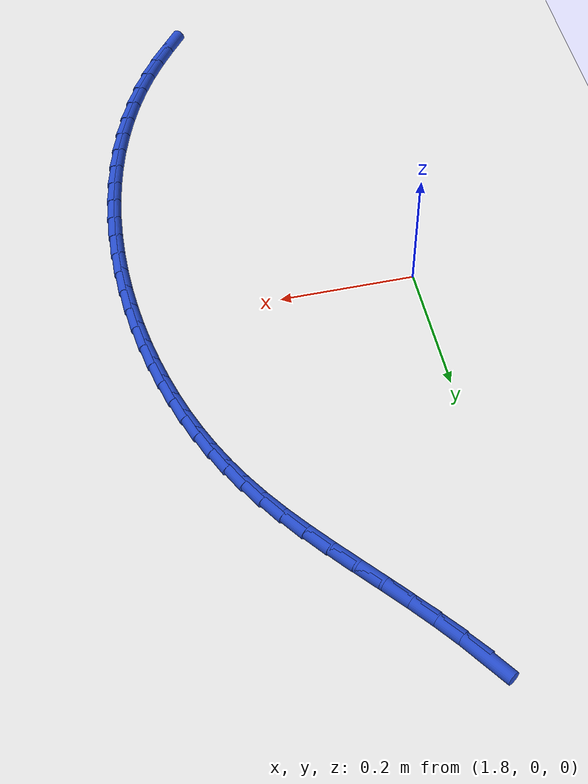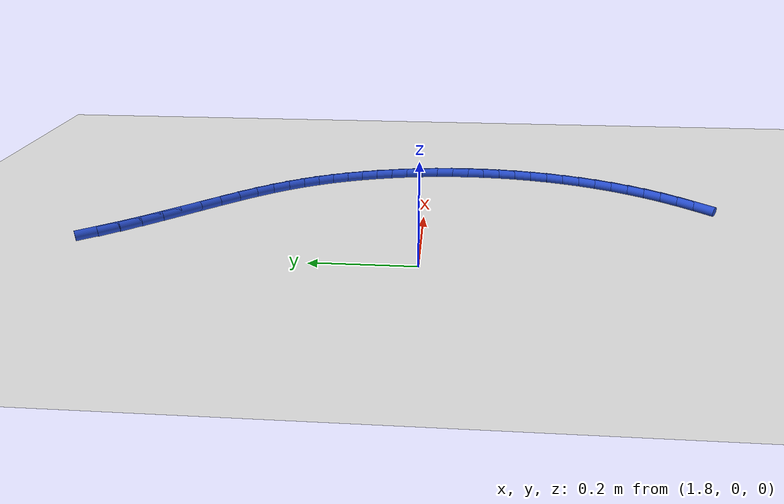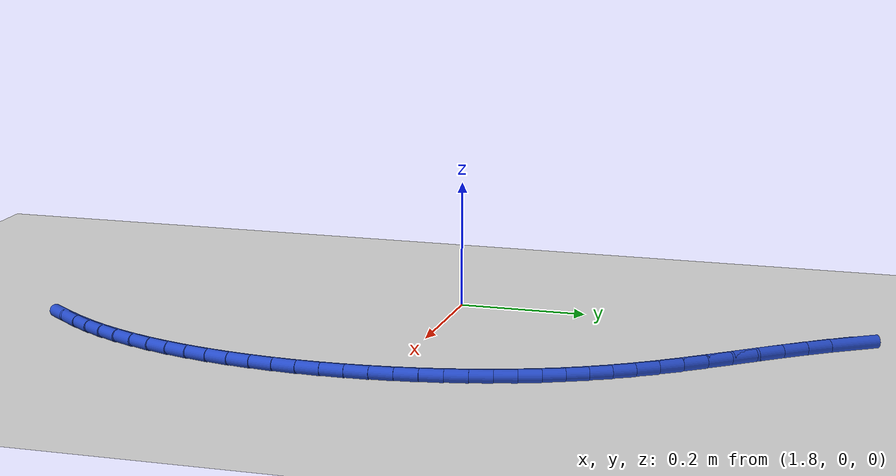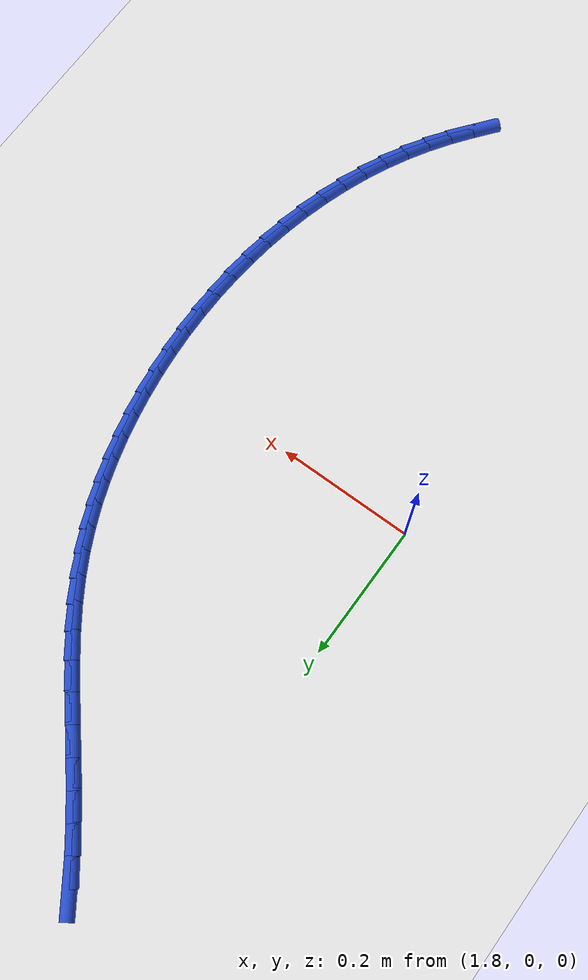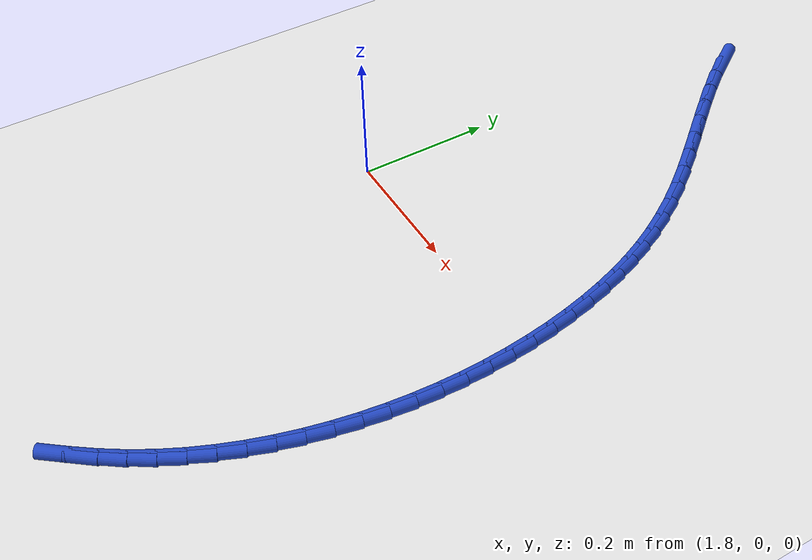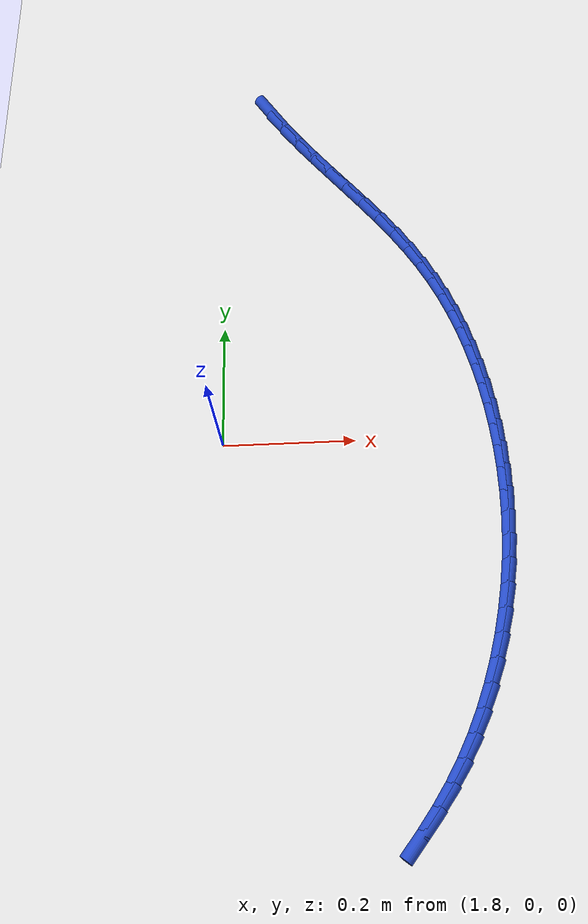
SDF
<sdf version="1.6">
 <world name="default">
  <model name="ground_plane">
   <static>1</static>
   <link name="link">
    <collision name="collision">
     <geometry><plane><normal>0 0 1</normal><size>100 100</size></plane></geometry>
     <surface><friction><ode><mu>100</mu><mu2>50</mu2></ode></friction></surface>
    </collision>
    <visual name="visual">
     <cast_shadows>0</cast_shadows>
     <geometry><plane><normal>0 0 1</normal><size>100 100</size></plane></geometry>
     <material>
      <script><uri>file://media/materials/scripts/gazebo.material</uri><name>Gazebo/WhiteGlow</name></script>
     </material>
    </visual>
   </link>
  </model>
  <model name="line">
   <link name="link_92">
    <pose>1.8774374021442877 0.6265046233111485 0.01 0 1.57 -0.9808010754879626</pose>
    <collision name="collision">
     <geometry><cylinder><radius>0.01</radius><length>0.08</length></cylinder></geometry>
    </collision>
    <visual name="visual">
     <material>
      <script><name>Gazebo/Blue</name><uri>file://media/materials/scripts/gazebo.material</uri></script>
     </material>
     <geometry><cylinder><radius>0.01</radius><length>0.08</length></cylinder></geometry>
    </visual>
   </link>
   <link name="link_93">
    <pose>1.8991911944667663 0.594014395029745 0.01 0 1.57 -0.9351428031789258</pose>
    <collision name="collision">
     <geometry><cylinder><radius>0.01</radius><length>0.08</length></cylinder></geometry>
    </collision>
    <visual name="visual">
     <material>
      <script><name>Gazebo/Blue</name><uri>file://media/materials/scripts/gazebo.material</uri></script>
     </material>
     <geometry><cylinder><radius>0.01</radius><length>0.08</length></cylinder></geometry>
    </visual>
   </link>
   <link name="link_94">
    <pose>1.9232338216860543 0.5614279042837972 0.01 0 1.57 -0.9039852305204067</pose>
    <collision name="collision">
     <geometry><cylinder><radius>0.01</radius><length>0.08</length></cylinder></geometry>
    </collision>
    <visual name="visual">
     <material>
      <script><name>Gazebo/Blue</name><uri>file://media/materials/scripts/gazebo.material</uri></script>
     </material>
     <geometry><cylinder><radius>0.01</radius><length>0.08</length></cylinder></geometry>
    </visual>
   </link>
   <link name="link_95">
    <pose>1.9488910431045885 0.5288297860900839 0.01 0 1.57 -0.8853224809207515</pose>
    <collision name="collision">
     <geometry><cylinder><radius>0.01</radius><length>0.08</length></cylinder></geometry>
    </collision>
    <visual name="visual">
     <material>
      <script><name>Gazebo/Blue</name><uri>file://media/materials/scripts/gazebo.material</uri></script>
     </material>
     <geometry><cylinder><radius>0.01</radius><length>0.08</length></cylinder></geometry>
    </visual>
   </link>
   <link name="link_96">
    <pose>1.9754886180248028 0.49630467546538487 0.01 0 1.57 -0.8780524695200574</pose>
    <collision name="collision">
     <geometry><cylinder><radius>0.01</radius><length>0.08</length></cylinder></geometry>
    </collision>
    <visual name="visual">
     <material>
      <script><name>Gazebo/Blue</name><uri>file://media/materials/scripts/gazebo.material</uri></script>
     </material>
     <geometry><cylinder><radius>0.01</radius><length>0.08</length></cylinder></geometry>
    </visual>
   </link>
   <link name="link_97">
    <pose>2.0023523057491333 0.46393720742647837 0.01 0 1.57 -0.8818808299381252</pose>
    <collision name="collision">
     <geometry><cylinder><radius>0.01</radius><length>0.08</length></cylinder></geometry>
    </collision>
    <visual name="visual">
     <material>
      <script><name>Gazebo/Blue</name><uri>file://media/materials/scripts/gazebo.material</uri></script>
     </material>
     <geometry><cylinder><radius>0.01</radius><length>0.08</length></cylinder></geometry>
    </visual>
   </link>
   <link name="link_98">
    <pose>2.028807865580015 0.43181201699014327 0.01 0 1.57 -0.8973113338929862</pose>
    <collision name="collision">
     <geometry><cylinder><radius>0.01</radius><length>0.08</length></cylinder></geometry>
    </collision>
    <visual name="visual">
     <material>
      <script><name>Gazebo/Blue</name><uri>file://media/materials/scripts/gazebo.material</uri></script>
     </material>
     <geometry><cylinder><radius>0.01</radius><length>0.08</length></cylinder></geometry>
    </visual>
   </link>
   <link name="link_99">
    <pose>2.0541810568198837 0.4000137391731597 0.01 0 1.57 -0.9257364491080634</pose>
    <collision name="collision">
     <geometry><cylinder><radius>0.01</radius><length>0.08</length></cylinder></geometry>
    </collision>
    <visual name="visual">
     <material>
      <script><name>Gazebo/Blue</name><uri>file://media/materials/scripts/gazebo.material</uri></script>
     </material>
     <geometry><cylinder><radius>0.01</radius><length>0.08</length></cylinder></geometry>
    </visual>
   </link>
   <link name="link_100">
    <pose>2.0777976387711754 0.3686270089923055 0.01 0 1.57 -0.9677758737793485</pose>
    <collision name="collision">
     <geometry><cylinder><radius>0.01</radius><length>0.08</length></cylinder></geometry>
    </collision>
    <visual name="visual">
     <material>
      <script><name>Gazebo/Blue</name><uri>file://media/materials/scripts/gazebo.material</uri></script>
     </material>
     <geometry><cylinder><radius>0.01</radius><length>0.08</length></cylinder></geometry>
    </visual>
   </link>
   <link name="link_101">
    <pose>2.0990948003103984 0.33769791343273337 0.01 0 1.57 -1.0158702733502711</pose>
    <collision name="collision">
     <geometry><cylinder><radius>0.01</radius><length>0.08</length></cylinder></geometry>
    </collision>
    <visual name="visual">
     <material>
      <script><name>Gazebo/Blue</name><uri>file://media/materials/scripts/gazebo.material</uri></script>
     </material>
     <geometry><cylinder><radius>0.01</radius><length>0.08</length></cylinder></geometry>
    </visual>
   </link>
   <link name="link_102">
    <pose>2.1180773163286886 0.30707618834189 0.01 0 1.57 -1.0663683195461382</pose>
    <collision name="collision">
     <geometry><cylinder><radius>0.01</radius><length>0.08</length></cylinder></geometry>
    </collision>
    <visual name="visual">
     <material>
      <script><name>Gazebo/Blue</name><uri>file://media/materials/scripts/gazebo.material</uri></script>
     </material>
     <geometry><cylinder><radius>0.01</radius><length>0.08</length></cylinder></geometry>
    </visual>
   </link>
   <link name="link_103">
    <pose>2.1349302232884564 0.2765492097421198 0.01 0 1.57 -1.1180155432965773</pose>
    <collision name="collision">
     <geometry><cylinder><radius>0.01</radius><length>0.08</length></cylinder></geometry>
    </collision>
    <visual name="visual">
     <material>
      <script><name>Gazebo/Blue</name><uri>file://media/materials/scripts/gazebo.material</uri></script>
     </material>
     <geometry><cylinder><radius>0.01</radius><length>0.08</length></cylinder></geometry>
    </visual>
   </link>
   <link name="link_104">
    <pose>2.149838631728487 0.24590432802972664 0.01 0 1.57 -1.1693506676141914</pose>
    <collision name="collision">
     <geometry><cylinder><radius>0.01</radius><length>0.08</length></cylinder></geometry>
    </collision>
    <visual name="visual">
     <material>
      <script><name>Gazebo/Blue</name><uri>file://media/materials/scripts/gazebo.material</uri></script>
     </material>
     <geometry><cylinder><radius>0.01</radius><length>0.08</length></cylinder></geometry>
    </visual>
   </link>
   <link name="link_105">
    <pose>2.1629876521875686 0.21492889360101647 0.01 0 1.57 -1.2188507446436363</pose>
    <collision name="collision">
     <geometry><cylinder><radius>0.01</radius><length>0.08</length></cylinder></geometry>
    </collision>
    <visual name="visual">
     <material>
      <script><name>Gazebo/Blue</name><uri>file://media/materials/scripts/gazebo.material</uri></script>
     </material>
     <geometry><cylinder><radius>0.01</radius><length>0.08</length></cylinder></geometry>
    </visual>
   </link>
   <link name="link_106">
    <pose>2.174562395204489 0.18341025685229337 0.01 0 1.57 -1.2651147756694412</pose>
    <collision name="collision">
     <geometry><cylinder><radius>0.01</radius><length>0.08</length></cylinder></geometry>
    </collision>
    <visual name="visual">
     <material>
      <script><name>Gazebo/Blue</name><uri>file://media/materials/scripts/gazebo.material</uri></script>
     </material>
     <geometry><cylinder><radius>0.01</radius><length>0.08</length></cylinder></geometry>
    </visual>
   </link>
   <link name="link_107">
    <pose>2.184746745264723 0.15113763995014962 0.01 0 1.57 -1.3082467776544147</pose>
    <collision name="collision">
     <geometry><cylinder><radius>0.01</radius><length>0.08</length></cylinder></geometry>
    </collision>
    <visual name="visual">
     <material>
      <script><name>Gazebo/Blue</name><uri>file://media/materials/scripts/gazebo.material</uri></script>
     </material>
     <geometry><cylinder><radius>0.01</radius><length>0.08</length></cylinder></geometry>
    </visual>
   </link>
   <link name="link_108">
    <pose>2.1936479638212907 0.1180172426136008 0.01 0 1.57 -1.3499804614221427</pose>
    <collision name="collision">
     <geometry><cylinder><radius>0.01</radius><length>0.08</length></cylinder></geometry>
    </collision>
    <visual name="visual">
     <material>
      <script><name>Gazebo/Blue</name><uri>file://media/materials/scripts/gazebo.material</uri></script>
     </material>
     <geometry><cylinder><radius>0.01</radius><length>0.08</length></cylinder></geometry>
    </visual>
   </link>
   <link name="link_109">
    <pose>2.2012527529903867 0.08413931804652125 0.01 0 1.57 -1.3907614188943616</pose>
    <collision name="collision">
     <geometry><cylinder><radius>0.01</radius><length>0.08</length></cylinder></geometry>
    </collision>
    <visual name="visual">
     <material>
      <script><name>Gazebo/Blue</name><uri>file://media/materials/scripts/gazebo.material</uri></script>
     </material>
     <geometry><cylinder><radius>0.01</radius><length>0.08</length></cylinder></geometry>
    </visual>
   </link>
   <link name="link_110">
    <pose>2.2075372316871347 0.0496102764348032 0.01 0 1.57 -1.4308626383242748</pose>
    <collision name="collision">
     <geometry><cylinder><radius>0.01</radius><length>0.08</length></cylinder></geometry>
    </collision>
    <visual name="visual">
     <material>
      <script><name>Gazebo/Blue</name><uri>file://media/materials/scripts/gazebo.material</uri></script>
     </material>
     <geometry><cylinder><radius>0.01</radius><length>0.08</length></cylinder></geometry>
    </visual>
   </link>
   <link name="link_111">
    <pose>2.2124775188266614 0.014536527964340728 0.01 0 1.57 -1.4705419366321162</pose>
    <collision name="collision">
     <geometry><cylinder><radius>0.01</radius><length>0.08</length></cylinder></geometry>
    </collision>
    <visual name="visual">
     <material>
      <script><name>Gazebo/Blue</name><uri>file://media/materials/scripts/gazebo.material</uri></script>
     </material>
     <geometry><cylinder><radius>0.01</radius><length>0.08</length></cylinder></geometry>
    </visual>
   </link>
   <link name="link_112">
    <pose>2.2160497333240925 -0.020975517178973453 0.01 0 1.57 -1.5100446810812649</pose>
    <collision name="collision">
     <geometry><cylinder><radius>0.01</radius><length>0.08</length></cylinder></geometry>
    </collision>
    <visual name="visual">
     <material>
      <script><name>Gazebo/Blue</name><uri>file://media/materials/scripts/gazebo.material</uri></script>
     </material>
     <geometry><cylinder><radius>0.01</radius><length>0.08</length></cylinder></geometry>
    </visual>
   </link>
   <link name="link_113">
    <pose>2.2182299940945525 -0.05681944880924618 0.01 0 1.57 -1.5496063049563849</pose>
    <collision name="collision">
     <geometry><cylinder><radius>0.01</radius><length>0.08</length></cylinder></geometry>
    </collision>
    <visual name="visual">
     <material>
      <script><name>Gazebo/Blue</name><uri>file://media/materials/scripts/gazebo.material</uri></script>
     </material>
     <geometry><cylinder><radius>0.01</radius><length>0.08</length></cylinder></geometry>
    </visual>
   </link>
   <link name="link_114">
    <pose>2.218994420053168 -0.09288885674058513 0.01 0 1.57 1.5521381326713917</pose>
    <collision name="collision">
     <geometry><cylinder><radius>0.01</radius><length>0.08</length></cylinder></geometry>
    </collision>
    <visual name="visual">
     <material>
      <script><name>Gazebo/Blue</name><uri>file://media/materials/scripts/gazebo.material</uri></script>
     </material>
     <geometry><cylinder><radius>0.01</radius><length>0.08</length></cylinder></geometry>
    </visual>
   </link>
   <link name="link_115">
    <pose>2.218319130115064 -0.12907733078709543 0.01 0 1.57 1.511781503903496</pose>
    <collision name="collision">
     <geometry><cylinder><radius>0.01</radius><length>0.08</length></cylinder></geometry>
    </collision>
    <visual name="visual">
     <material>
      <script><name>Gazebo/Blue</name><uri>file://media/materials/scripts/gazebo.material</uri></script>
     </material>
     <geometry><cylinder><radius>0.01</radius><length>0.08</length></cylinder></geometry>
    </visual>
   </link>
   <link name="link_116">
    <pose>2.216180243195367 -0.16527846076288477 0.01 0 1.57 1.4706991739457143</pose>
    <collision name="collision">
     <geometry><cylinder><radius>0.01</radius><length>0.08</length></cylinder></geometry>
    </collision>
    <visual name="visual">
     <material>
      <script><name>Gazebo/Blue</name><uri>file://media/materials/scripts/gazebo.material</uri></script>
     </material>
     <geometry><cylinder><radius>0.01</radius><length>0.08</length></cylinder></geometry>
    </visual>
   </link>
   <link name="link_117">
    <pose>2.2125538782092007 -0.2013858364820599 0.01 0 1.57 1.4286775946075985</pose>
    <collision name="collision">
     <geometry><cylinder><radius>0.01</radius><length>0.08</length></cylinder></geometry>
    </collision>
    <visual name="visual">
     <material>
      <script><name>Gazebo/Blue</name><uri>file://media/materials/scripts/gazebo.material</uri></script>
     </material>
     <geometry><cylinder><radius>0.01</radius><length>0.08</length></cylinder></geometry>
    </visual>
   </link>
   <link name="link_118">
    <pose>2.207416154071692 -0.23729304775872861 0.01 0 1.57 1.385506854181593</pose>
    <collision name="collision">
     <geometry><cylinder><radius>0.01</radius><length>0.08</length></cylinder></geometry>
    </collision>
    <visual name="visual">
     <material>
      <script><name>Gazebo/Blue</name><uri>file://media/materials/scripts/gazebo.material</uri></script>
     </material>
     <geometry><cylinder><radius>0.01</radius><length>0.08</length></cylinder></geometry>
    </visual>
   </link>
   <link name="link_119">
    <pose>2.2007431896979663 -0.272893684406996 0.01 0 1.57 1.3409814107997835</pose>
    <collision name="collision">
     <geometry><cylinder><radius>0.01</radius><length>0.08</length></cylinder></geometry>
    </collision>
    <visual name="visual">
     <material>
      <script><name>Gazebo/Blue</name><uri>file://media/materials/scripts/gazebo.material</uri></script>
     </material>
     <geometry><cylinder><radius>0.01</radius><length>0.08</length></cylinder></geometry>
    </visual>
   </link>
   <link name="link_120">
    <pose>2.1925111040031493 -0.30808133624096967 0.01 0 1.57 1.2949018396030174</pose>
    <collision name="collision">
     <geometry><cylinder><radius>0.01</radius><length>0.08</length></cylinder></geometry>
    </collision>
    <visual name="visual">
     <material>
      <script><name>Gazebo/Blue</name><uri>file://media/materials/scripts/gazebo.material</uri></script>
     </material>
     <geometry><cylinder><radius>0.01</radius><length>0.08</length></cylinder></geometry>
    </visual>
   </link>
   <link name="link_121">
    <pose>2.182696015902366 -0.34274959307475666 0.01 0 1.57 1.2470777920896365</pose>
    <collision name="collision">
     <geometry><cylinder><radius>0.01</radius><length>0.08</length></cylinder></geometry>
    </collision>
    <visual name="visual">
     <material>
      <script><name>Gazebo/Blue</name><uri>file://media/materials/scripts/gazebo.material</uri></script>
     </material>
     <geometry><cylinder><radius>0.01</radius><length>0.08</length></cylinder></geometry>
    </visual>
   </link>
   <link name="link_122">
    <pose>2.171274044310742 -0.3767920447224643 0.01 0 1.57 1.1973323707887367</pose>
    <collision name="collision">
     <geometry><cylinder><radius>0.01</radius><length>0.08</length></cylinder></geometry>
    </collision>
    <visual name="visual">
     <material>
      <script><name>Gazebo/Blue</name><uri>file://media/materials/scripts/gazebo.material</uri></script>
     </material>
     <geometry><cylinder><radius>0.01</radius><length>0.08</length></cylinder></geometry>
    </visual>
   </link>
   <link name="link_123">
    <pose>2.1582213081434043 -0.4101022809981981 0.01 0 1.57 1.1455080956953914</pose>
    <collision name="collision">
     <geometry><cylinder><radius>0.01</radius><length>0.08</length></cylinder></geometry>
    </collision>
    <visual name="visual">
     <material>
      <script><name>Gazebo/Blue</name><uri>file://media/materials/scripts/gazebo.material</uri></script>
     </material>
     <geometry><cylinder><radius>0.01</radius><length>0.08</length></cylinder></geometry>
    </visual>
   </link>
   <link name="link_124">
    <pose>2.1435139263154763 -0.4425738917160654 0.01 0 1.57 1.091474561812249</pose>
    <collision name="collision">
     <geometry><cylinder><radius>0.01</radius><length>0.08</length></cylinder></geometry>
    </collision>
    <visual name="visual">
     <material>
      <script><name>Gazebo/Blue</name><uri>file://media/materials/scripts/gazebo.material</uri></script>
     </material>
     <geometry><cylinder><radius>0.01</radius><length>0.08</length></cylinder></geometry>
    </visual>
   </link>
   <link name="link_125">
    <pose>2.127128017742085 -0.47410046669017336 0.01 0 1.57 1.0351377385045473</pose>
    <collision name="collision">
     <geometry><cylinder><radius>0.01</radius><length>0.08</length></cylinder></geometry>
    </collision>
    <visual name="visual">
     <material>
      <script><name>Gazebo/Blue</name><uri>file://media/materials/scripts/gazebo.material</uri></script>
     </material>
     <geometry><cylinder><radius>0.01</radius><length>0.08</length></cylinder></geometry>
    </visual>
   </link>
   <link name="link_126">
    <pose>2.1090397013383555 -0.5045755957346295 0.01 0 1.57 0.9775793863562215</pose>
    <collision name="collision">
     <geometry><cylinder><radius>0.01</radius><length>0.08</length></cylinder></geometry>
    </collision>
    <visual name="visual">
     <material>
      <script><name>Gazebo/Blue</name><uri>file://media/materials/scripts/gazebo.material</uri></script>
     </material>
     <geometry><cylinder><radius>0.01</radius><length>0.08</length></cylinder></geometry>
    </visual>
   </link>
   <link name="link_127">
    <pose>2.0892565123661244 -0.5339177203814538 0.01 0 1.57 0.9296396827244902</pose>
    <collision name="collision">
     <geometry><cylinder><radius>0.01</radius><length>0.08</length></cylinder></geometry>
    </collision>
    <visual name="visual">
     <material>
      <script><name>Gazebo/Blue</name><uri>file://media/materials/scripts/gazebo.material</uri></script>
     </material>
     <geometry><cylinder><radius>0.01</radius><length>0.08</length></cylinder></geometry>
    </visual>
   </link>
   <link name="link_128">
    <pose>2.068086360059442 -0.5622828912422717 0.01 0 1.57 0.8973496028535779</pose>
    <collision name="collision">
     <geometry><cylinder><radius>0.01</radius><length>0.08</length></cylinder></geometry>
    </collision>
    <visual name="visual">
     <material>
      <script><name>Gazebo/Blue</name><uri>file://media/materials/scripts/gazebo.material</uri></script>
     </material>
     <geometry><cylinder><radius>0.01</radius><length>0.08</length></cylinder></geometry>
    </visual>
   </link>
  </model>
 </world>
</sdf>
